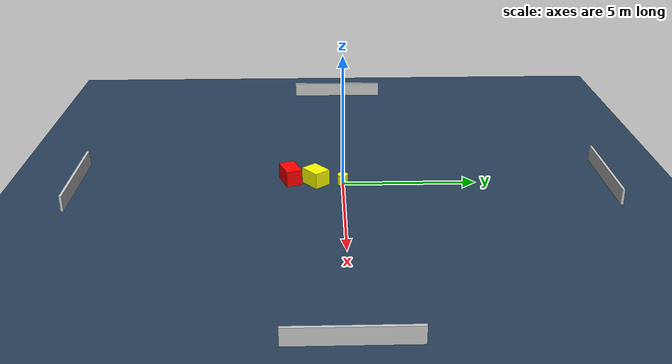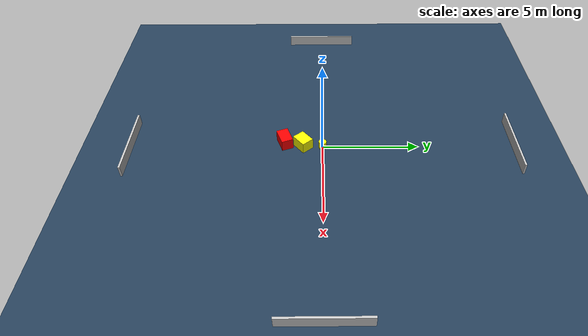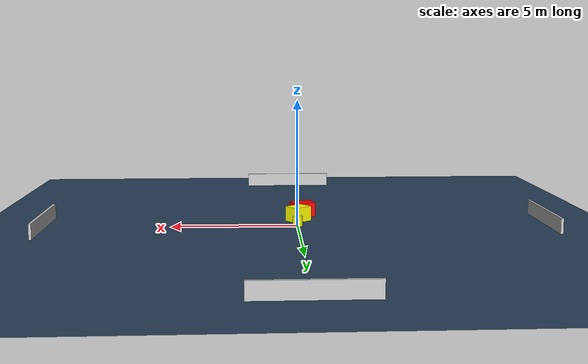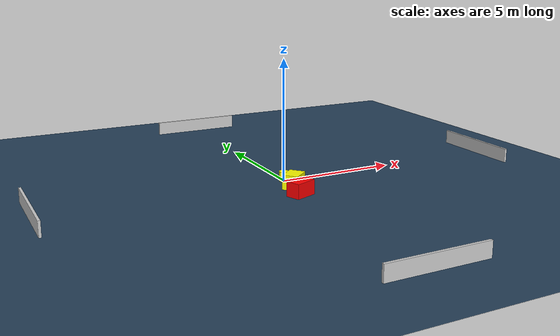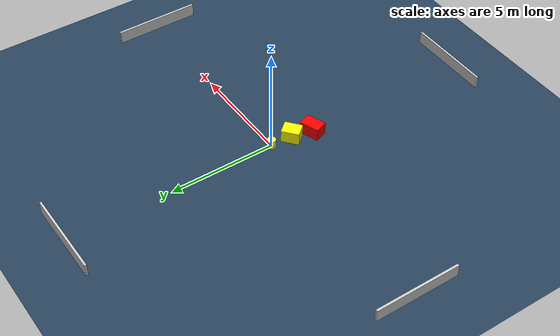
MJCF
<?xml version="1.0" ?>
<mujoco model="generated_environment">
  <option timestep="0.01" integrator="RK4" cone="elliptic"/>
  <default>
    <geom density="1"/>
  </default>
  <asset>
    <texture builtin="gradient" height="3072" name="skybox" rgb1="0.3 0.5 0.7" rgb2="0 0 0" type="skybox" width="512"/>
    <texture builtin="checker" height="300" name="groundplane" rgb1="0.2 0.3 0.4" rgb2="0.1 0.2 0.3" type="2d" width="300"/>
    <material name="groundplane" reflectance="0.2" texrepeat="5 5" texture="groundplane"/>
  </asset>
  <worldbody>
    <light dir="0 0 -1" directional="true" pos="0 0 1.5"/>
    <geom condim="3" friction="0.5 0.005 0.001" material="groundplane" name="floor" pos="0 0 0" size="0 0 0.05" type="plane"/>
    <body name="walls">
      <geom name="wall_1" condim="4" pos="-10.0 0.0 0.3" rgba="0.800000011920929 0.800000011920929 0.800000011920929 1.0" size="0.05 2.0 0.3" type="box"/>
      <geom name="wall_2" condim="4" pos="10.0 0.0 0.3" rgba="0.800000011920929 0.800000011920929 0.800000011920929 1.0" size="0.05 2.0 0.3" type="box"/>
      <geom name="wall_3" condim="4" pos="0.0 -10.0 0.3" rgba="0.800000011920929 0.800000011920929 0.800000011920929 1.0" size="2.0 0.05 0.3" type="box"/>
      <geom name="wall_4" condim="4" pos="0.0 10.0 0.3" rgba="0.800000011920929 0.800000011920929 0.800000011920929 1.0" size="2.0 0.05 0.3" type="box"/>
    </body>
    <body name="robot">
      <joint name="joint_x" type="slide" pos="0 0 0" axis="1 0 0"/>
      <joint name="joint_y" type="slide" pos="0 0 0" axis="0 1 0"/>
      <geom name="robot" type="cylinder" pos="0.0 0.0 0.2" size="0.2 0.2 0.0" mass="5.0" friction="1.0 0.005 0.0001" condim="4" rgba="1.0 1.0 0.0 1.0"/>
    </body>
    <body name="obstacle_1_movable">
      <geom name="obstacle_1_movable" condim="4" pos="-0.08212517270940525 -1.0172589172580515 0.3" euler="0 0 130.0008534931367" friction="0.0 0.005 0.001" rgba="1.0 1.0 0.0 1.0" size="0.32524566449926284 0.4100280955282139 0.3" type="box" mass="0.1"/>
      <joint type="free"/>
    </body>
    <body name="obstacle_2_static">
      <geom name="obstacle_2_static" condim="4" pos="-0.29682742728325157 -1.9764068056191368 0.3" euler="0 0 110.7520021578908" friction="0.0 0.005 0.001" rgba="1.0 0.0 0.0 1.0" size="0.30415771539516956 0.46702330931849084 0.3" type="box"/>
    </body>
  </worldbody>
  <actuator>
    <motor name="actuator_x" joint="joint_x" gear="1" ctrlrange="-1 1"/>
    <motor name="actuator_y" joint="joint_y" gear="1" ctrlrange="-1 1"/>
  </actuator>
</mujoco>
